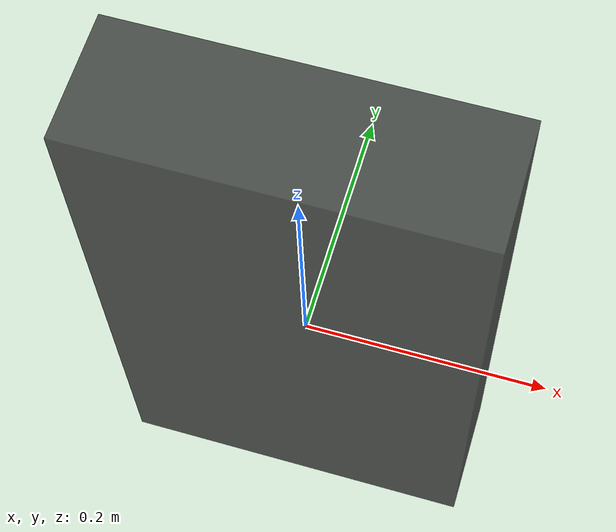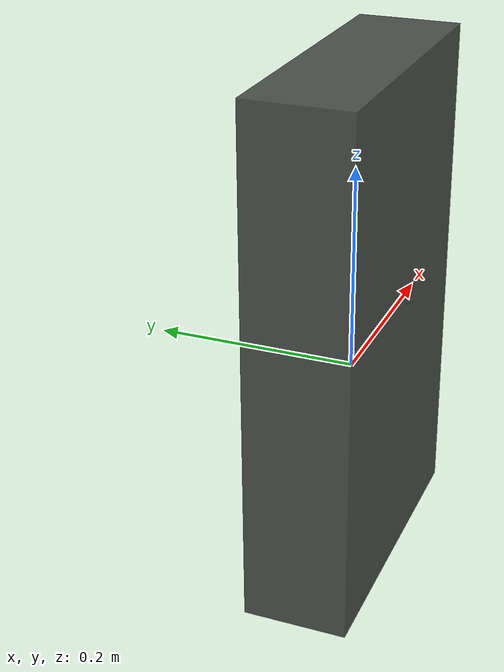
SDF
<sdf version='1.6'>
  <model name='torso'>

  <link name="base">
  <pose> 0 0 0 0 0 0</pose>

  <visual name='visual'>
    <pose> 0 0 0.05 0 0 0 </pose>
    <geometry>
      <box>
       <size>0.3 0.1 0.5</size>
      </box>
    </geometry>
    <material>
      <diffuse>0.1788232 0.1788232 0.1788232 0.8</diffuse>
    </material>
  </visual>

  <collision name='collision'>
    <pose> 0 0 0.05 0 0 0 </pose>
    <geometry>
      <box>
       <size>0.3 0.1 0.5</size>
      </box>
    </geometry>
    <drake:proximity_properties>
      <drake:compliant_hydroelastic/>
      <drake:hydroelastic_modulus>1.0e+6</drake:hydroelastic_modulus>
      <drake:hunt_crossley_dissipation>10</drake:hunt_crossley_dissipation>
      <drake:mesh_resolution_hint>0.005</drake:mesh_resolution_hint>
      <!-- Both mu_dynamic and mu_static are used in Continuous system.
        Only mu_dynamic is used in Discrete system.  -->
      <drake:mu_dynamic>1.0</drake:mu_dynamic>
      <drake:mu_static>1.0</drake:mu_static>
    </drake:proximity_properties>
  </collision>
  </link>

  </model>
</sdf>
